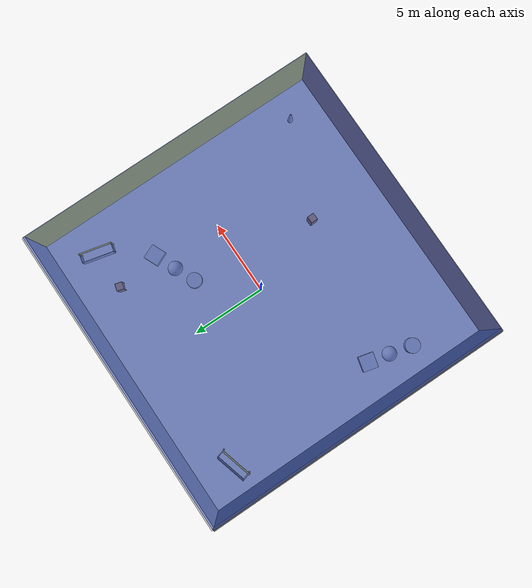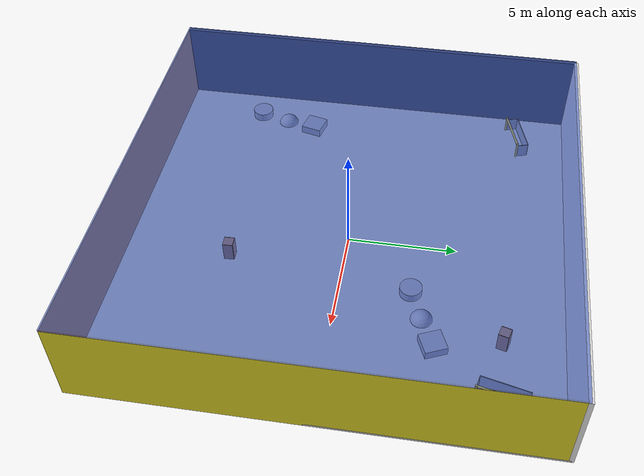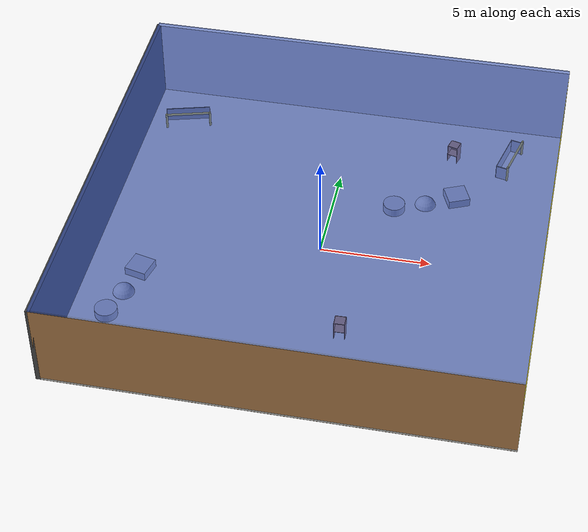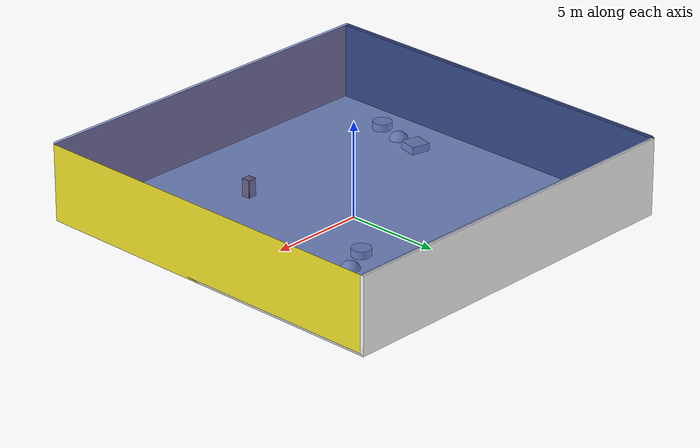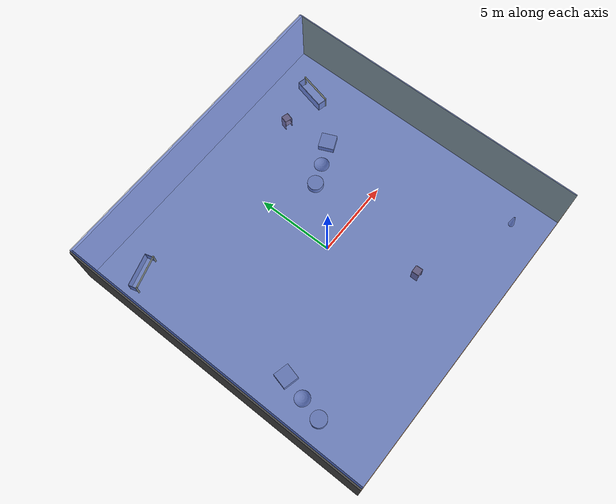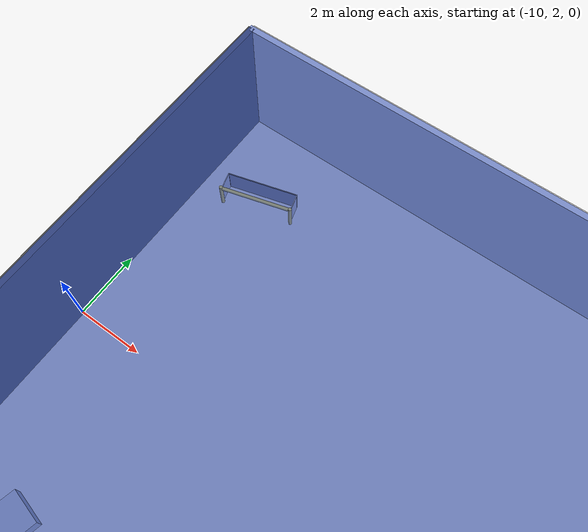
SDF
<sdf version="1.4">
 <world name="default">
  <physics type="ode">
   <max_step_size>0.001</max_step_size>
   <real_time_factor>1</real_time_factor>
   <real_time_update_rate>1000</real_time_update_rate>
   <gravity>0 0 -9.8</gravity>
  </physics>
  <scene><ambient>0.4 0.4 0.4 1</ambient><background>0.7 0.7 0.7 1</background><shadows>1</shadows></scene>
  <model name="Surrounding">
   <static>1</static>
   <link name="Ceiling">
    <collision name="Ceiling_Collision"><geometry><box><size>20 20 0.1</size></box></geometry></collision>
    <visual name="Ceiling_Visual">
     <geometry><box><size>20 20 0.1</size></box></geometry>
     <material>
      <script><uri>file://media/materials/scripts/gazebo.material</uri><name>Gazebo/BlueTransparent</name></script>
     </material>
    </visual>
    <pose>0 0 4.05 0 0 0</pose>
   </link>
   <link name="Wall_South">
    <collision name="Wall_South_Collision">
     <geometry><box><size>20 0 4</size></box></geometry>
     <pose>0 0 2 0 -0 0</pose>
    </collision>
    <visual name="Wall_South_Visual">
     <pose>0 0 2 0 -0 0</pose>
     <geometry><box><size>20 0 4</size></box></geometry>
     <material>
      <script><uri>file://media/materials/scripts/gazebo.material</uri><name>Gazebo/WoodFloor</name></script>
     </material>
    </visual>
    <velocity_decay><linear>0</linear><angular>0</angular></velocity_decay>
    <pose>0 -10 0 0 -0 0</pose>
   </link>
   <link name="Wall_East">
    <collision name="Wall_21_Collision">
     <geometry><box><size>20 0 4</size></box></geometry>
     <pose>0 0 2 0 -0 0</pose>
    </collision>
    <visual name="Wall_21_Visual">
     <pose>0 0 2 0 -0 0</pose>
     <geometry><box><size>20 0 4</size></box></geometry>
     <material>
      <script><uri>file://media/materials/scripts/gazebo.material</uri><name>Gazebo/YellowGlow</name></script>
     </material>
    </visual>
    <velocity_decay><linear>0</linear><angular>0</angular></velocity_decay>
    <pose>10 0 0 0 -0 1.5708</pose>
   </link>
   <link name="Wall_North">
    <collision name="Wall_22_Collision">
     <geometry><box><size>20 0.2 4</size></box></geometry>
     <pose>0 0 2 0 -0 0</pose>
    </collision>
    <visual name="Wall_22_Visual">
     <pose>0 0 2 0 -0 0</pose>
     <geometry><box><size>20 0.2 4</size></box></geometry>
     <material>
      <script><uri>file://media/materials/scripts/gazebo.material</uri><name>Gazebo/WhiteGlow</name></script>
     </material>
    </visual>
    <velocity_decay><linear>0</linear><angular>0</angular></velocity_decay>
    <pose>0 10 0 0 -0 0</pose>
   </link>
   <link name="Wall_West">
    <collision name="Wall_23_Collision">
     <geometry><box><size>20 0.2 4</size></box></geometry>
     <pose>0 0 2 0 -0 0</pose>
    </collision>
    <visual name="Wall_23_Visual">
     <pose>0 0 2 0 -0 0</pose>
     <geometry><box><size>20 0.2 4</size></box></geometry>
     <material>
      <script><uri>file://media/materials/scripts/gazebo.material</uri><name>Gazebo/Road</name></script>
     </material>
    </visual>
    <velocity_decay><linear>0</linear><angular>0</angular></velocity_decay>
    <pose>-10 0 0 0 0 -1.5708</pose>
   </link>
   <link name="Ground_link">
    <collision name="collision">
     <pose>0 0 .05 0 -0 0</pose>
     <geometry><box><size>20 20 0.1</size></box></geometry>
    </collision>
    <visual name="visual">
     <pose>0 0 .05 0 -0 0</pose>
     <geometry><box><size>20 20 0.1</size></box></geometry>
     <material>
      <script><uri>file://media/materials/scripts/gazebo.material</uri><name>Gazebo/CeilingTiled</name></script>
     </material>
    </visual>
   </link>
   <static>1</static>
  </model>
  <spherical_coordinates>
   <surface_model>EARTH_WGS84</surface_model>
   <latitude_deg>0</latitude_deg>
   <longitude_deg>0</longitude_deg>
   <elevation>0</elevation>
   <heading_deg>0</heading_deg>
  </spherical_coordinates>
  <light name="lightball_0" type="diffuse">
   <diffuse>0.8 0.8 0.8 1</diffuse>
   <specular>0.2 0.2 0.2 1</specular>
   <attenuation>
    <range>100</range>
    <constant>0.7</constant>
    <linear>0.01</linear>
    <quadratic>0.001</quadratic>
   </attenuation>
   <direction>-0.5 0.1 -0.9</direction>
   <pose>7.84703674845 6.86771638369 1.27457542347 0 0 0</pose>
  </light>
  <light name="lightball_1" type="diffuse">
   <diffuse>0.8 0.8 0.8 1</diffuse>
   <specular>0.2 0.2 0.2 1</specular>
   <attenuation>
    <range>100</range>
    <constant>0.7</constant>
    <linear>0.01</linear>
    <quadratic>0.001</quadratic>
   </attenuation>
   <direction>-0.5 0.1 -0.9</direction>
   <pose>1.42548432117 -8.60249127993 0.968405089531 0 0 0</pose>
  </light>
  <light name="lightball_2" type="diffuse">
   <diffuse>0.8 0.8 0.8 1</diffuse>
   <specular>0.2 0.2 0.2 1</specular>
   <attenuation>
    <range>100</range>
    <constant>0.7</constant>
    <linear>0.01</linear>
    <quadratic>0.001</quadratic>
   </attenuation>
   <direction>-0.5 0.1 -0.9</direction>
   <pose>1.33897325688 8.94260058099 2.17631151034 0 0 0</pose>
  </light>
  <light name="lightball_3" type="diffuse">
   <diffuse>0.8 0.8 0.8 1</diffuse>
   <specular>0.2 0.2 0.2 1</specular>
   <attenuation>
    <range>100</range>
    <constant>0.7</constant>
    <linear>0.01</linear>
    <quadratic>0.001</quadratic>
   </attenuation>
   <direction>-0.5 0.1 -0.9</direction>
   <pose>1.3279359761 -6.7920448477 2.5559370268 0 0 0</pose>
  </light>
  <light name="lightball_4" type="diffuse">
   <diffuse>0.8 0.8 0.8 1</diffuse>
   <specular>0.2 0.2 0.2 1</specular>
   <attenuation>
    <range>100</range>
    <constant>0.7</constant>
    <linear>0.01</linear>
    <quadratic>0.001</quadratic>
   </attenuation>
   <direction>-0.5 0.1 -0.9</direction>
   <pose>-4.68255713281 -4.67633474221 2.87517044144 0 0 0</pose>
  </light>
  <include>
   <uri>model://textured_shapes</uri>
   <pose>-7.91476357476 -4.44052224584 0 0 0 2.90121964986</pose>
  </include>
  <include>
   <uri>model://robocup_3Dsim_goal</uri>
   <pose>-8.00453252364 7.26996020017 0 0 0 1.84270092815</pose>
  </include>
  <include><uri>model://cabinet</uri><pose>1.87566398633 -5.18044677781 0 0 0 1.59761465677</pose></include>
  <include>
   <uri>model://textured_shapes</uri>
   <pose>4.21871663509 3.79354306206 0 0 0 1.98248229588</pose>
  </include>
  <include><uri>model://cabinet</uri><pose>5.069424707 7.28251903196 0 0 0 1.29170896831</pose></include>
  <include>
   <uri>model://construction_cone</uri>
   <pose>8.16549890947 -7.78886538266 0 0 0 3.07472311506</pose>
  </include>
  <include>
   <uri>model://robocup_3Dsim_goal</uri>
   <pose>7.97882726574 7.27949852343 0 0 0 2.9094642911</pose>
  </include>
 </world>
</sdf>

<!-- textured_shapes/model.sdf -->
<sdf version="1.6">
  <model name="textured_shapes">
    <pose>0 0 0.5 0 0 0</pose>
    <link name="box">
      <pose>0 -1.5 0 0 0 0</pose>
      <collision name="collision">
        <geometry>
          <box>
            <size>1 1 1</size>
          </box>
        </geometry>
      </collision>
      <visual name="visual">
        <geometry>
          <box>
            <size>1 1 1</size>
          </box>
        </geometry>
        <material>
          <script>
            <uri>model://../model_source/models/textured_shapes/materials/scripts</uri>
            <uri>model://../model_source/models/textured_shapes/materials/textures</uri>
            <name>TexturedShape/Squares</name>
          </script>
        </material>
      </visual>
    </link>
    <link name="sphere">
      <collision name="collision">
        <geometry>
          <sphere>
            <radius>0.5</radius>
          </sphere>
        </geometry>
      </collision>
      <visual name="visual">
        <geometry>
          <sphere>
            <radius>0.5</radius>
          </sphere>
        </geometry>
        <material>
          <script>
            <uri>model://../model_source/models/textured_shapes/materials/scripts</uri>
            <uri>model://../model_source/models/textured_shapes/materials/textures</uri>
            <name>TexturedShape/Squares</name>
          </script>
        </material>
      </visual>
    </link>
    <link name="cylinder">
      <pose>0 1.5 0 0 0 0</pose>
      <collision name="collision">
        <geometry>
          <cylinder>
            <radius>0.5</radius>
            <length>1</length>
          </cylinder>
        </geometry>
      </collision>
      <visual name="visual">
        <geometry>
          <cylinder>
            <radius>0.5</radius>
            <length>1</length>
          </cylinder>
        </geometry>
        <material>
          <script>
            <uri>model://../model_source/models/textured_shapes/materials/scripts</uri>
            <uri>model://../model_source/models/textured_shapes/materials/textures</uri>
            <name>TexturedShape/Squares</name>
          </script>
        </material>
      </visual>
    </link>
  </model>
</sdf>

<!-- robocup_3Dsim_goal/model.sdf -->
<sdf version="1.5">
  <model name="robocup_3d_goal">
    <static>true</static>
    <link name="left_post">
      <pose>0 1.05 0.45 0 0 0</pose>
      <collision name="collision">
        <geometry>
          <cylinder>
            <radius>0.05</radius>
            <length>0.9</length>
          </cylinder>
        </geometry>
      </collision>
      <visual name="visual">
        <geometry>
          <cylinder>
            <radius>0.05</radius>
            <length>0.9</length>
          </cylinder>
        </geometry>
        <material>
          <script>
            <uri>file://media/materials/scripts/gazebo.material</uri>
            <name>Gazebo/ZincYellow</name>
          </script>
        </material>
      </visual>
    </link>
    <link name="left_support_horiz_lower">
      <pose>0.30 1.05 0.01 0 0 0</pose>
      <collision name="collision">
        <geometry>
          <box>
            <size>0.50 0.02 0.02</size>
          </box>
        </geometry>
      </collision>
      <visual name="visual">
        <geometry>
          <box>
            <size>0.50 0.02 0.02</size>
          </box>
        </geometry>
        <material>
          <script>
            <uri>file://media/materials/scripts/gazebo.material</uri>
            <name>Gazebo/White</name>
          </script>
        </material>
      </visual>
    </link>
    <link name="left_support_horiz_upper">
      <pose>0.30 1.05 0.79 0 0 0</pose>
      <collision name="collision">
        <geometry>
          <box>
            <size>0.50 0.02 0.02</size>
          </box>
        </geometry>
      </collision>
      <visual name="visual">
        <geometry>
          <box>
            <size>0.50 0.02 0.02</size>
          </box>
        </geometry>
        <material>
          <script>
            <uri>file://media/materials/scripts/gazebo.material</uri>
            <name>Gazebo/White</name>
          </script>
        </material>
      </visual>
    </link>
    <link name="left_support_vertical">
      <pose>0.56 1.05 0.4 0 1.5708 0</pose>
      <collision name="collision">
        <geometry>
          <box>
            <size>0.80 0.02 0.02</size>
          </box>
        </geometry>
      </collision>
      <visual name="visual">
        <geometry>
          <box>
            <size>0.80 0.02 0.02</size>
          </box>
        </geometry>
        <material>
          <script>
            <uri>file://media/materials/scripts/gazebo.material</uri>
            <name>Gazebo/White</name>
          </script>
        </material>
      </visual>
    </link>
    <link name="right_support_horiz_lower">
      <pose>0.30 -1.05 0.01 0 0 0</pose>
      <collision name="collision">
        <geometry>
          <box>
            <size>0.50 0.02 0.02</size>
          </box>
        </geometry>
      </collision>
      <visual name="visual">
        <geometry>
          <box>
            <size>0.50 0.02 0.02</size>
          </box>
        </geometry>
        <material>
          <script>
            <uri>file://media/materials/scripts/gazebo.material</uri>
            <name>Gazebo/White</name>
          </script>
        </material>
      </visual>
    </link>
    <link name="right_support_horiz_upper">
      <pose>0.30 -1.05 0.79 0 0 0</pose>
      <collision name="collision">
        <geometry>
          <box>
            <size>0.50 0.02 0.02</size>
          </box>
        </geometry>
      </collision>
      <visual name="visual">
        <geometry>
          <box>
            <size>0.50 0.02 0.02</size>
          </box>
        </geometry>
        <material>
          <script>
            <uri>file://media/materials/scripts/gazebo.material</uri>
            <name>Gazebo/White</name>
          </script>
        </material>
      </visual>
    </link>
    <link name="right_support_vertical">
      <pose>0.56 -1.05 0.4 0 1.5708 0</pose>
      <collision name="collision">
        <geometry>
          <box>
            <size>0.80 0.02 0.02</size>
          </box>
        </geometry>
      </collision>
      <visual name="visual">
        <geometry>
          <box>
            <size>0.80 0.02 0.02</size>
          </box>
        </geometry>
        <material>
          <script>
            <uri>file://media/materials/scripts/gazebo.material</uri>
            <name>Gazebo/White</name>
          </script>
        </material>
      </visual>
    </link>
    <link name="center_support_horiz_lower">
      <pose>0.56 0 0.01 0 1.5708 0</pose>
      <collision name="collision">
        <geometry>
          <box>
            <size>0.02 2.08 0.02</size>
          </box>
        </geometry>
      </collision>
      <visual name="visual">
        <geometry>
          <box>
            <size>0.02 2.08 0.02</size>
          </box>
        </geometry>
        <material>
          <script>
            <uri>file://media/materials/scripts/gazebo.material</uri>
            <name>Gazebo/White</name>
          </script>
        </material>
      </visual>
    </link>
    <link name="center_support_horiz_upper">
      <pose>0.56 0 0.79 0 1.5708 0</pose>
      <collision name="collision">
        <geometry>
          <box>
            <size>0.02 2.08 0.02</size>
          </box>
        </geometry>
      </collision>
      <visual name="visual">
        <geometry>
          <box>
            <size>0.02 2.08 0.02</size>
          </box>
        </geometry>
        <material>
          <script>
            <uri>file://media/materials/scripts/gazebo.material</uri>
            <name>Gazebo/White</name>
          </script>
        </material>
      </visual>
    </link>
    <link name="right_post">
      <pose>0 -1.05 0.45 0 0 0</pose>
      <collision name="collision">
        <geometry>
          <cylinder>
            <radius>0.05</radius>
            <length>0.9</length>
          </cylinder>
        </geometry>
      </collision>
      <visual name="visual">
        <geometry>
          <cylinder>
            <radius>0.05</radius>
            <length>0.9</length>
          </cylinder>
        </geometry>
        <material>
          <script>
            <uri>file://media/materials/scripts/gazebo.material</uri>
            <name>Gazebo/ZincYellow</name>
          </script>
        </material>
      </visual>
    </link>
    <link name="crossbar">
      <pose>0 0 0.85 1.57 1.57 0</pose>
      <collision name="collision">
        <geometry>
          <cylinder>
            <radius>0.05</radius>
            <length>2.0</length>
          </cylinder>
        </geometry>
      </collision>
      <visual name="visual">
        <geometry>
          <cylinder>
            <radius>0.05</radius>
            <length>2.0</length>
          </cylinder>
        </geometry>
        <material>
          <script>
            <uri>file://media/materials/scripts/gazebo.material</uri>
            <name>Gazebo/ZincYellow</name>
          </script>
        </material>
      </visual>
    </link>
    <link name="center_net">
      <pose>0.56 0 0.40 0 0 0</pose>
      <collision name="collision">
        <geometry>
          <box>
            <size>0.01 2.1 0.80</size>
          </box>
        </geometry>
      </collision>
      <visual name="visual">
        <geometry>
          <box>
            <size>0.01 2.1 0.80</size>
          </box>
        </geometry>
        <material>
          <script>
            <uri>model://../model_source/models/robocup09_spl_field/materials/scripts/</uri>
            <uri>model://../model_source/models/robocup09_spl_field/materials/textures/</uri>
            <name>RoboCup/Net</name>
          </script>
        </material>
      </visual>
    </link>
    <link name="left_net">
      <pose>0.30 1.05 0.40 0 0 0</pose>
      <collision name="collision">
        <geometry>
          <box>
            <size>0.50 0.01 0.76</size>
          </box>
        </geometry>
      </collision>
      <visual name="visual">
        <geometry>
          <box>
            <size>0.50 0.01 0.76</size>
          </box>
        </geometry>
        <material>
          <script>
            <uri>model://../model_source/models/robocup09_spl_field/materials/scripts/</uri>
            <uri>model://../model_source/models/robocup09_spl_field/materials/textures/</uri>
            <name>RoboCup/Net</name>
          </script>
        </material>
      </visual>
    </link>
    <link name="right_net">
      <pose>0.30 -1.05 0.40 0 0 0</pose>
      <collision name="collision">
        <geometry>
          <box>
            <size>0.50 0.01 0.76</size>
          </box>
        </geometry>
      </collision>
      <visual name="visual">
        <geometry>
          <box>
            <size>0.50 0.01 0.76</size>
          </box>
        </geometry>
        <material>
          <script>
            <uri>model://../model_source/models/robocup09_spl_field/materials/scripts/</uri>
            <uri>model://../model_source/models/robocup09_spl_field/materials/textures/</uri>
            <name>RoboCup/Net</name>
          </script>
        </material>
      </visual>
    </link>
  </model>
</sdf>

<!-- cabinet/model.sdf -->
<sdf version="1.5">
  <model name="cabinet">
    <static>true</static>
    <link name="cabinet_bottom_plate">
      <inertial>
        <pose>0 0 -1 0 0 0</pose>
        <inertia>
          <ixx>2.050000</ixx>
          <ixy>0</ixy>
          <ixz>0</ixz>
          <iyy>2.050000</iyy>
          <iyz>0</iyz>
          <izz>2.050000</izz>
        </inertia>
        <mass>25.000000</mass>
      </inertial>
      <collision name="cabinet_bottom_plate_geom">
        <pose>0 0 0.010000 0 0 0</pose>
        <geometry>
          <box>
            <size>0.450000 0.450000 0.020000</size>
          </box>
        </geometry>
      </collision>
      <visual name="cabinet_bottom_plate_geom_visual">
        <pose>0 0 0.010000 0 0 0</pose>
        <geometry>
          <box>
            <size>0.450000 0.450000 0.020000</size>
          </box>
        </geometry>
        <material>
          <script>
            <uri>model://media/materials/scripts/gazebo.material</uri>
            <name>Gazebo/Wood</name>
          </script>
        </material>
      </visual>
      <collision name="cabinet_bottom_plate_geom_cabinet_back_plate">
        <pose>0.235000 0 0.510000 0 0 0</pose>
        <geometry>
          <box>
            <size>0.020000 0.450000 1.020000</size>
          </box>
        </geometry>
      </collision>
      <visual name="cabinet_bottom_plate_geom_cabinet_back_plate_visual">
        <pose>0.235000 0 0.510000 0 0 0</pose>
        <geometry>
          <box>
            <size>0.020000 0.450000 1.020000</size>
          </box>
        </geometry>
        <material>
          <script>
            <uri>model://media/materials/scripts/gazebo.material</uri>
            <name>Gazebo/Wood</name>
          </script>
        </material>
      </visual>
      <collision name="cabinet_bottom_plate_geom_cabinet_left_plate">
        <pose>0 0.235000 0.510000 0 0 0</pose>
        <geometry>
          <box>
            <size>0.450000 0.020000 1.020000</size>
          </box>
        </geometry>
      </collision>
      <visual name="cabinet_bottom_plate_geom_cabinet_left_plate_visual">
        <pose>0 0.235000 0.510000 0 0 0</pose>
        <geometry>
          <box>
            <size>0.450000 0.020000 1.020000</size>
          </box>
        </geometry>
        <material>
          <script>
            <uri>model://media/materials/scripts/gazebo.material</uri>
            <name>Gazebo/Wood</name>
          </script>
        </material>
      </visual>
      <collision name="cabinet_bottom_plate_geom_cabinet_middle_plate">
        <pose>0 0 0.510000 0 0 0</pose>
        <geometry>
          <box>
            <size>0.450000 0.450000 0.020000</size>
          </box>
        </geometry>
      </collision>
      <visual name="cabinet_bottom_plate_geom_cabinet_middle_plate_visual">
        <pose>0 0 0.510000 0 0 0</pose>
        <geometry>
          <box>
            <size>0.450000 0.450000 0.020000</size>
          </box>
        </geometry>
        <material>
          <script>
            <uri>model://media/materials/scripts/gazebo.material</uri>
            <name>Gazebo/Wood</name>
          </script>
        </material>
      </visual>
      <collision name="cabinet_bottom_plate_geom_cabinet_right_plate">
        <pose>0 -0.235000 0.510000 0 0 0</pose>
        <geometry>
          <box>
            <size>0.450000 0.020000 1.020000</size>
          </box>
        </geometry>
      </collision>
      <visual name="cabinet_bottom_plate_geom_cabinet_right_plate_visual">
        <pose>0 -0.235000 0.510000 0 0 0</pose>
        <geometry>
          <box>
            <size>0.450000 0.020000 1.020000</size>
          </box>
        </geometry>
        <material>
          <script>
            <uri>model://media/materials/scripts/gazebo.material</uri>
            <name>Gazebo/Wood</name>
          </script>
        </material>
      </visual>
      <collision name="cabinet_bottom_plate_geom_cabinet_top_plate">
        <pose>0 0 1.010000 0 0 0</pose>
        <geometry>
          <box>
            <size>0.450000 0.450000 0.020000</size>
          </box>
        </geometry>
      </collision>
      <visual name="cabinet_bottom_plate_geom_cabinet_top_plate_visual">
        <pose>0 0 1.010000 0 0 0</pose>
        <geometry>
          <box>
            <size>0.450000 0.450000 0.020000</size>
          </box>
        </geometry>
        <material>
          <script>
            <uri>model://media/materials/scripts/gazebo.material</uri>
            <name>Gazebo/Wood</name>
          </script>
        </material>
      </visual>
    </link>
  </model>
</sdf>

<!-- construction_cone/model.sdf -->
<sdf version="1.5">
  <model name="Construction Cone">
    <link name="link">
      <collision name="collision">
        <geometry>
          <mesh>
            <scale>10 10 10</scale>
            <uri>file://isr-testbed/construction_cone/meshes/construction_cone.dae</uri>
          </mesh>
        </geometry>
      </collision>
      <visual name="visual">
        <geometry>
          <mesh>
            <scale>10 10 10</scale>
            <uri>file://isr-testbed/construction_cone/meshes/construction_cone.dae</uri>
          </mesh>
        </geometry>
      </visual>
    </link>
  </model>
</sdf>
